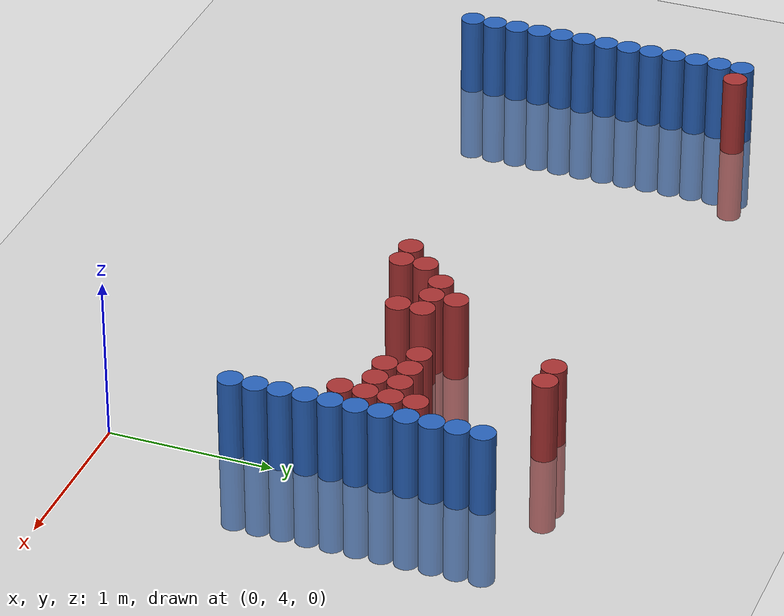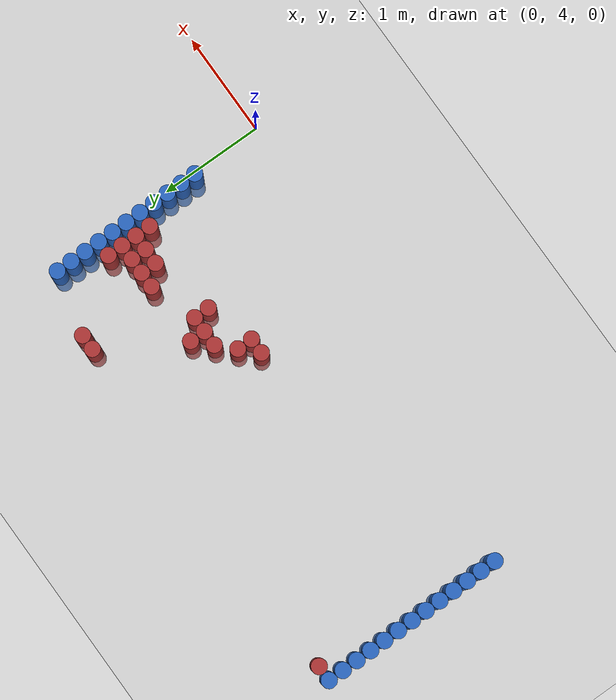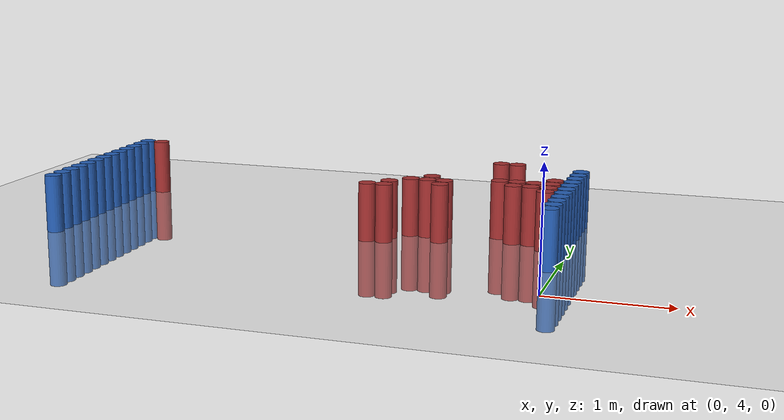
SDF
<sdf version="1.6">
 <world name="default">
  <model name="ground_plane">
   <static>1</static>
   <link name="link">
    <collision name="collision">
     <geometry><plane><normal>0 0 1</normal><size>100 100</size></plane></geometry>
     <surface><friction><ode><mu>100</mu><mu2>50</mu2></ode></friction></surface>
    </collision>
    <visual name="visual">
     <cast_shadows>0</cast_shadows>
     <geometry><plane><normal>0 0 1</normal><size>100 100</size></plane></geometry>
     <material>
      <script><uri>file://media/materials/scripts/gazebo.material</uri><name>Gazebo/Grey</name></script>
     </material>
    </visual>
   </link>
  </model>
  <model name="unit_cylinder_89">
   <static>1</static>
   <pose>-4.425000 4.575000 0.000000 0.000000 0.000000 0.000000</pose>
   <link name="link">
    <inertial>
     <mass>1</mass>
     <inertia><ixx>0.145833</ixx><ixy>0</ixy><ixz>0</ixz><iyy>0.145833</iyy><iyz>0</iyz><izz>0.125</izz></inertia>
    </inertial>
    <collision name="collision">
     <geometry><cylinder><radius>0.075000</radius><length>1</length></cylinder></geometry>
    </collision>
    <visual name="visual">
     <geometry><cylinder><radius>0.075000</radius><length>1</length></cylinder></geometry>
     <material>
      <ambient>0.152000 0.379000 0.720000 1</ambient>
      <diffuse>0.152000 0.379000 0.720000 1</diffuse>
     </material>
     <material>
      <script><name>Gazebo/Grey</name><uri>file://media/materials/scripts/gazebo.material</uri></script>
     </material>
    </visual>
   </link>
  </model>
  <model name="unit_cylinder_90">
   <static>1</static>
   <pose>-0.075000 4.725000 0.000000 0.000000 0.000000 0.000000</pose>
   <link name="link">
    <inertial>
     <mass>1</mass>
     <inertia><ixx>0.145833</ixx><ixy>0</ixy><ixz>0</ixz><iyy>0.145833</iyy><iyz>0</iyz><izz>0.125</izz></inertia>
    </inertial>
    <collision name="collision">
     <geometry><cylinder><radius>0.075000</radius><length>1</length></cylinder></geometry>
    </collision>
    <visual name="visual">
     <geometry><cylinder><radius>0.075000</radius><length>1</length></cylinder></geometry>
     <material>
      <ambient>0.152000 0.379000 0.720000 1</ambient>
      <diffuse>0.152000 0.379000 0.720000 1</diffuse>
     </material>
     <material>
      <script><name>Gazebo/Grey</name><uri>file://media/materials/scripts/gazebo.material</uri></script>
     </material>
    </visual>
   </link>
  </model>
  <model name="unit_cylinder_91">
   <static>1</static>
   <pose>-4.425000 4.725000 0.000000 0.000000 0.000000 0.000000</pose>
   <link name="link">
    <inertial>
     <mass>1</mass>
     <inertia><ixx>0.145833</ixx><ixy>0</ixy><ixz>0</ixz><iyy>0.145833</iyy><iyz>0</iyz><izz>0.125</izz></inertia>
    </inertial>
    <collision name="collision">
     <geometry><cylinder><radius>0.075000</radius><length>1</length></cylinder></geometry>
    </collision>
    <visual name="visual">
     <geometry><cylinder><radius>0.075000</radius><length>1</length></cylinder></geometry>
     <material>
      <ambient>0.152000 0.379000 0.720000 1</ambient>
      <diffuse>0.152000 0.379000 0.720000 1</diffuse>
     </material>
     <material>
      <script><name>Gazebo/Grey</name><uri>file://media/materials/scripts/gazebo.material</uri></script>
     </material>
    </visual>
   </link>
  </model>
  <model name="unit_cylinder_92">
   <static>1</static>
   <pose>-0.075000 4.875000 0.000000 0.000000 0.000000 0.000000</pose>
   <link name="link">
    <inertial>
     <mass>1</mass>
     <inertia><ixx>0.145833</ixx><ixy>0</ixy><ixz>0</ixz><iyy>0.145833</iyy><iyz>0</iyz><izz>0.125</izz></inertia>
    </inertial>
    <collision name="collision">
     <geometry><cylinder><radius>0.075000</radius><length>1</length></cylinder></geometry>
    </collision>
    <visual name="visual">
     <geometry><cylinder><radius>0.075000</radius><length>1</length></cylinder></geometry>
     <material>
      <ambient>0.152000 0.379000 0.720000 1</ambient>
      <diffuse>0.152000 0.379000 0.720000 1</diffuse>
     </material>
     <material>
      <script><name>Gazebo/Grey</name><uri>file://media/materials/scripts/gazebo.material</uri></script>
     </material>
    </visual>
   </link>
  </model>
  <model name="unit_cylinder_93">
   <static>1</static>
   <pose>-4.425000 4.875000 0.000000 0.000000 0.000000 0.000000</pose>
   <link name="link">
    <inertial>
     <mass>1</mass>
     <inertia><ixx>0.145833</ixx><ixy>0</ixy><ixz>0</ixz><iyy>0.145833</iyy><iyz>0</iyz><izz>0.125</izz></inertia>
    </inertial>
    <collision name="collision">
     <geometry><cylinder><radius>0.075000</radius><length>1</length></cylinder></geometry>
    </collision>
    <visual name="visual">
     <geometry><cylinder><radius>0.075000</radius><length>1</length></cylinder></geometry>
     <material>
      <ambient>0.152000 0.379000 0.720000 1</ambient>
      <diffuse>0.152000 0.379000 0.720000 1</diffuse>
     </material>
     <material>
      <script><name>Gazebo/Grey</name><uri>file://media/materials/scripts/gazebo.material</uri></script>
     </material>
    </visual>
   </link>
  </model>
  <model name="unit_cylinder_94">
   <static>1</static>
   <pose>-0.075000 5.025000 0.000000 0.000000 0.000000 0.000000</pose>
   <link name="link">
    <inertial>
     <mass>1</mass>
     <inertia><ixx>0.145833</ixx><ixy>0</ixy><ixz>0</ixz><iyy>0.145833</iyy><iyz>0</iyz><izz>0.125</izz></inertia>
    </inertial>
    <collision name="collision">
     <geometry><cylinder><radius>0.075000</radius><length>1</length></cylinder></geometry>
    </collision>
    <visual name="visual">
     <geometry><cylinder><radius>0.075000</radius><length>1</length></cylinder></geometry>
     <material>
      <ambient>0.152000 0.379000 0.720000 1</ambient>
      <diffuse>0.152000 0.379000 0.720000 1</diffuse>
     </material>
     <material>
      <script><name>Gazebo/Grey</name><uri>file://media/materials/scripts/gazebo.material</uri></script>
     </material>
    </visual>
   </link>
  </model>
  <model name="unit_cylinder_95">
   <static>1</static>
   <pose>-4.425000 5.025000 0.000000 0.000000 0.000000 0.000000</pose>
   <link name="link">
    <inertial>
     <mass>1</mass>
     <inertia><ixx>0.145833</ixx><ixy>0</ixy><ixz>0</ixz><iyy>0.145833</iyy><iyz>0</iyz><izz>0.125</izz></inertia>
    </inertial>
    <collision name="collision">
     <geometry><cylinder><radius>0.075000</radius><length>1</length></cylinder></geometry>
    </collision>
    <visual name="visual">
     <geometry><cylinder><radius>0.075000</radius><length>1</length></cylinder></geometry>
     <material>
      <ambient>0.152000 0.379000 0.720000 1</ambient>
      <diffuse>0.152000 0.379000 0.720000 1</diffuse>
     </material>
     <material>
      <script><name>Gazebo/Grey</name><uri>file://media/materials/scripts/gazebo.material</uri></script>
     </material>
    </visual>
   </link>
  </model>
  <model name="unit_cylinder_96">
   <static>1</static>
   <pose>-4.425000 5.175000 0.000000 0.000000 0.000000 0.000000</pose>
   <link name="link">
    <inertial>
     <mass>1</mass>
     <inertia><ixx>0.145833</ixx><ixy>0</ixy><ixz>0</ixz><iyy>0.145833</iyy><iyz>0</iyz><izz>0.125</izz></inertia>
    </inertial>
    <collision name="collision">
     <geometry><cylinder><radius>0.075000</radius><length>1</length></cylinder></geometry>
    </collision>
    <visual name="visual">
     <geometry><cylinder><radius>0.075000</radius><length>1</length></cylinder></geometry>
     <material>
      <ambient>0.152000 0.379000 0.720000 1</ambient>
      <diffuse>0.152000 0.379000 0.720000 1</diffuse>
     </material>
     <material>
      <script><name>Gazebo/Grey</name><uri>file://media/materials/scripts/gazebo.material</uri></script>
     </material>
    </visual>
   </link>
  </model>
  <model name="unit_cylinder_97">
   <static>1</static>
   <pose>-4.425000 5.325000 0.000000 0.000000 0.000000 0.000000</pose>
   <link name="link">
    <inertial>
     <mass>1</mass>
     <inertia><ixx>0.145833</ixx><ixy>0</ixy><ixz>0</ixz><iyy>0.145833</iyy><iyz>0</iyz><izz>0.125</izz></inertia>
    </inertial>
    <collision name="collision">
     <geometry><cylinder><radius>0.075000</radius><length>1</length></cylinder></geometry>
    </collision>
    <visual name="visual">
     <geometry><cylinder><radius>0.075000</radius><length>1</length></cylinder></geometry>
     <material>
      <ambient>0.152000 0.379000 0.720000 1</ambient>
      <diffuse>0.152000 0.379000 0.720000 1</diffuse>
     </material>
     <material>
      <script><name>Gazebo/Grey</name><uri>file://media/materials/scripts/gazebo.material</uri></script>
     </material>
    </visual>
   </link>
  </model>
  <model name="unit_cylinder_98">
   <static>1</static>
   <pose>-4.425000 5.475000 0.000000 0.000000 0.000000 0.000000</pose>
   <link name="link">
    <inertial>
     <mass>1</mass>
     <inertia><ixx>0.145833</ixx><ixy>0</ixy><ixz>0</ixz><iyy>0.145833</iyy><iyz>0</iyz><izz>0.125</izz></inertia>
    </inertial>
    <collision name="collision">
     <geometry><cylinder><radius>0.075000</radius><length>1</length></cylinder></geometry>
    </collision>
    <visual name="visual">
     <geometry><cylinder><radius>0.075000</radius><length>1</length></cylinder></geometry>
     <material>
      <ambient>0.152000 0.379000 0.720000 1</ambient>
      <diffuse>0.152000 0.379000 0.720000 1</diffuse>
     </material>
     <material>
      <script><name>Gazebo/Grey</name><uri>file://media/materials/scripts/gazebo.material</uri></script>
     </material>
    </visual>
   </link>
  </model>
  <model name="unit_cylinder_99">
   <static>1</static>
   <pose>-4.425000 5.625000 0.000000 0.000000 0.000000 0.000000</pose>
   <link name="link">
    <inertial>
     <mass>1</mass>
     <inertia><ixx>0.145833</ixx><ixy>0</ixy><ixz>0</ixz><iyy>0.145833</iyy><iyz>0</iyz><izz>0.125</izz></inertia>
    </inertial>
    <collision name="collision">
     <geometry><cylinder><radius>0.075000</radius><length>1</length></cylinder></geometry>
    </collision>
    <visual name="visual">
     <geometry><cylinder><radius>0.075000</radius><length>1</length></cylinder></geometry>
     <material>
      <ambient>0.152000 0.379000 0.720000 1</ambient>
      <diffuse>0.152000 0.379000 0.720000 1</diffuse>
     </material>
     <material>
      <script><name>Gazebo/Grey</name><uri>file://media/materials/scripts/gazebo.material</uri></script>
     </material>
    </visual>
   </link>
  </model>
  <model name="unit_cylinder_100">
   <static>1</static>
   <pose>-4.425000 5.775000 0.000000 0.000000 0.000000 0.000000</pose>
   <link name="link">
    <inertial>
     <mass>1</mass>
     <inertia><ixx>0.145833</ixx><ixy>0</ixy><ixz>0</ixz><iyy>0.145833</iyy><iyz>0</iyz><izz>0.125</izz></inertia>
    </inertial>
    <collision name="collision">
     <geometry><cylinder><radius>0.075000</radius><length>1</length></cylinder></geometry>
    </collision>
    <visual name="visual">
     <geometry><cylinder><radius>0.075000</radius><length>1</length></cylinder></geometry>
     <material>
      <ambient>0.152000 0.379000 0.720000 1</ambient>
      <diffuse>0.152000 0.379000 0.720000 1</diffuse>
     </material>
     <material>
      <script><name>Gazebo/Grey</name><uri>file://media/materials/scripts/gazebo.material</uri></script>
     </material>
    </visual>
   </link>
  </model>
  <model name="unit_cylinder_101">
   <static>1</static>
   <pose>-4.425000 5.925000 0.000000 0.000000 0.000000 0.000000</pose>
   <link name="link">
    <inertial>
     <mass>1</mass>
     <inertia><ixx>0.145833</ixx><ixy>0</ixy><ixz>0</ixz><iyy>0.145833</iyy><iyz>0</iyz><izz>0.125</izz></inertia>
    </inertial>
    <collision name="collision">
     <geometry><cylinder><radius>0.075000</radius><length>1</length></cylinder></geometry>
    </collision>
    <visual name="visual">
     <geometry><cylinder><radius>0.075000</radius><length>1</length></cylinder></geometry>
     <material>
      <ambient>0.152000 0.379000 0.720000 1</ambient>
      <diffuse>0.152000 0.379000 0.720000 1</diffuse>
     </material>
     <material>
      <script><name>Gazebo/Grey</name><uri>file://media/materials/scripts/gazebo.material</uri></script>
     </material>
    </visual>
   </link>
  </model>
  <model name="unit_cylinder_102">
   <static>1</static>
   <pose>-4.425000 6.075000 0.000000 0.000000 0.000000 0.000000</pose>
   <link name="link">
    <inertial>
     <mass>1</mass>
     <inertia><ixx>0.145833</ixx><ixy>0</ixy><ixz>0</ixz><iyy>0.145833</iyy><iyz>0</iyz><izz>0.125</izz></inertia>
    </inertial>
    <collision name="collision">
     <geometry><cylinder><radius>0.075000</radius><length>1</length></cylinder></geometry>
    </collision>
    <visual name="visual">
     <geometry><cylinder><radius>0.075000</radius><length>1</length></cylinder></geometry>
     <material>
      <ambient>0.152000 0.379000 0.720000 1</ambient>
      <diffuse>0.152000 0.379000 0.720000 1</diffuse>
     </material>
     <material>
      <script><name>Gazebo/Grey</name><uri>file://media/materials/scripts/gazebo.material</uri></script>
     </material>
    </visual>
   </link>
  </model>
  <model name="unit_cylinder_103">
   <static>1</static>
   <pose>-4.425000 6.225000 0.000000 0.000000 0.000000 0.000000</pose>
   <link name="link">
    <inertial>
     <mass>1</mass>
     <inertia><ixx>0.145833</ixx><ixy>0</ixy><ixz>0</ixz><iyy>0.145833</iyy><iyz>0</iyz><izz>0.125</izz></inertia>
    </inertial>
    <collision name="collision">
     <geometry><cylinder><radius>0.075000</radius><length>1</length></cylinder></geometry>
    </collision>
    <visual name="visual">
     <geometry><cylinder><radius>0.075000</radius><length>1</length></cylinder></geometry>
     <material>
      <ambient>0.152000 0.379000 0.720000 1</ambient>
      <diffuse>0.152000 0.379000 0.720000 1</diffuse>
     </material>
     <material>
      <script><name>Gazebo/Grey</name><uri>file://media/materials/scripts/gazebo.material</uri></script>
     </material>
    </visual>
   </link>
  </model>
  <model name="unit_cylinder_104">
   <static>1</static>
   <pose>-4.425000 6.375000 0.000000 0.000000 0.000000 0.000000</pose>
   <link name="link">
    <inertial>
     <mass>1</mass>
     <inertia><ixx>0.145833</ixx><ixy>0</ixy><ixz>0</ixz><iyy>0.145833</iyy><iyz>0</iyz><izz>0.125</izz></inertia>
    </inertial>
    <collision name="collision">
     <geometry><cylinder><radius>0.075000</radius><length>1</length></cylinder></geometry>
    </collision>
    <visual name="visual">
     <geometry><cylinder><radius>0.075000</radius><length>1</length></cylinder></geometry>
     <material>
      <ambient>0.152000 0.379000 0.720000 1</ambient>
      <diffuse>0.152000 0.379000 0.720000 1</diffuse>
     </material>
     <material>
      <script><name>Gazebo/Grey</name><uri>file://media/materials/scripts/gazebo.material</uri></script>
     </material>
    </visual>
   </link>
  </model>
  <model name="unit_cylinder_126">
   <static>1</static>
   <pose>-4.275000 6.375000 0.000000 0.000000 0.000000 0.000000</pose>
   <link name="link">
    <inertial>
     <mass>1</mass>
     <inertia><ixx>0.145833</ixx><ixy>0</ixy><ixz>0</ixz><iyy>0.145833</iyy><iyz>0</iyz><izz>0.125</izz></inertia>
    </inertial>
    <collision name="collision">
     <geometry><cylinder><radius>0.075000</radius><length>1</length></cylinder></geometry>
    </collision>
    <visual name="visual">
     <geometry><cylinder><radius>0.075000</radius><length>1</length></cylinder></geometry>
     <material>
      <ambient>0.648000 0.192000 0.192000 1</ambient>
      <diffuse>0.648000 0.192000 0.192000 1</diffuse>
     </material>
     <material>
      <script><name>Gazebo/Grey</name><uri>file://media/materials/scripts/gazebo.material</uri></script>
     </material>
    </visual>
   </link>
  </model>
  <model name="unit_cylinder_158">
   <static>1</static>
   <pose>-1.725000 5.175000 0.000000 0.000000 0.000000 0.000000</pose>
   <link name="link">
    <inertial>
     <mass>1</mass>
     <inertia><ixx>0.145833</ixx><ixy>0</ixy><ixz>0</ixz><iyy>0.145833</iyy><iyz>0</iyz><izz>0.125</izz></inertia>
    </inertial>
    <collision name="collision">
     <geometry><cylinder><radius>0.075000</radius><length>1</length></cylinder></geometry>
    </collision>
    <visual name="visual">
     <geometry><cylinder><radius>0.075000</radius><length>1</length></cylinder></geometry>
     <material>
      <ambient>0.648000 0.192000 0.192000 1</ambient>
      <diffuse>0.648000 0.192000 0.192000 1</diffuse>
     </material>
     <material>
      <script><name>Gazebo/Grey</name><uri>file://media/materials/scripts/gazebo.material</uri></script>
     </material>
    </visual>
   </link>
  </model>
  <model name="unit_cylinder_159">
   <static>1</static>
   <pose>-1.575000 5.175000 0.000000 0.000000 0.000000 0.000000</pose>
   <link name="link">
    <inertial>
     <mass>1</mass>
     <inertia><ixx>0.145833</ixx><ixy>0</ixy><ixz>0</ixz><iyy>0.145833</iyy><iyz>0</iyz><izz>0.125</izz></inertia>
    </inertial>
    <collision name="collision">
     <geometry><cylinder><radius>0.075000</radius><length>1</length></cylinder></geometry>
    </collision>
    <visual name="visual">
     <geometry><cylinder><radius>0.075000</radius><length>1</length></cylinder></geometry>
     <material>
      <ambient>0.648000 0.192000 0.192000 1</ambient>
      <diffuse>0.648000 0.192000 0.192000 1</diffuse>
     </material>
     <material>
      <script><name>Gazebo/Grey</name><uri>file://media/materials/scripts/gazebo.material</uri></script>
     </material>
    </visual>
   </link>
  </model>
  <model name="unit_cylinder_160">
   <static>1</static>
   <pose>-1.575000 5.325000 0.000000 0.000000 0.000000 0.000000</pose>
   <link name="link">
    <inertial>
     <mass>1</mass>
     <inertia><ixx>0.145833</ixx><ixy>0</ixy><ixz>0</ixz><iyy>0.145833</iyy><iyz>0</iyz><izz>0.125</izz></inertia>
    </inertial>
    <collision name="collision">
     <geometry><cylinder><radius>0.075000</radius><length>1</length></cylinder></geometry>
    </collision>
    <visual name="visual">
     <geometry><cylinder><radius>0.075000</radius><length>1</length></cylinder></geometry>
     <material>
      <ambient>0.648000 0.192000 0.192000 1</ambient>
      <diffuse>0.648000 0.192000 0.192000 1</diffuse>
     </material>
     <material>
      <script><name>Gazebo/Grey</name><uri>file://media/materials/scripts/gazebo.material</uri></script>
     </material>
    </visual>
   </link>
  </model>
  <model name="unit_cylinder_161">
   <static>1</static>
   <pose>-1.425000 5.475000 0.000000 0.000000 0.000000 0.000000</pose>
   <link name="link">
    <inertial>
     <mass>1</mass>
     <inertia><ixx>0.145833</ixx><ixy>0</ixy><ixz>0</ixz><iyy>0.145833</iyy><iyz>0</iyz><izz>0.125</izz></inertia>
    </inertial>
    <collision name="collision">
     <geometry><cylinder><radius>0.075000</radius><length>1</length></cylinder></geometry>
    </collision>
    <visual name="visual">
     <geometry><cylinder><radius>0.075000</radius><length>1</length></cylinder></geometry>
     <material>
      <ambient>0.648000 0.192000 0.192000 1</ambient>
      <diffuse>0.648000 0.192000 0.192000 1</diffuse>
     </material>
     <material>
      <script><name>Gazebo/Grey</name><uri>file://media/materials/scripts/gazebo.material</uri></script>
     </material>
    </visual>
   </link>
  </model>
  <model name="unit_cylinder_162">
   <static>1</static>
   <pose>-1.275000 5.475000 0.000000 0.000000 0.000000 0.000000</pose>
   <link name="link">
    <inertial>
     <mass>1</mass>
     <inertia><ixx>0.145833</ixx><ixy>0</ixy><ixz>0</ixz><iyy>0.145833</iyy><iyz>0</iyz><izz>0.125</izz></inertia>
    </inertial>
    <collision name="collision">
     <geometry><cylinder><radius>0.075000</radius><length>1</length></cylinder></geometry>
    </collision>
    <visual name="visual">
     <geometry><cylinder><radius>0.075000</radius><length>1</length></cylinder></geometry>
     <material>
      <ambient>0.648000 0.192000 0.192000 1</ambient>
      <diffuse>0.648000 0.192000 0.192000 1</diffuse>
     </material>
     <material>
      <script><name>Gazebo/Grey</name><uri>file://media/materials/scripts/gazebo.material</uri></script>
     </material>
    </visual>
   </link>
  </model>
  <model name="unit_cylinder_163">
   <static>1</static>
   <pose>-1.275000 5.625000 0.000000 0.000000 0.000000 0.000000</pose>
   <link name="link">
    <inertial>
     <mass>1</mass>
     <inertia><ixx>0.145833</ixx><ixy>0</ixy><ixz>0</ixz><iyy>0.145833</iyy><iyz>0</iyz><izz>0.125</izz></inertia>
    </inertial>
    <collision name="collision">
     <geometry><cylinder><radius>0.075000</radius><length>1</length></cylinder></geometry>
    </collision>
    <visual name="visual">
     <geometry><cylinder><radius>0.075000</radius><length>1</length></cylinder></geometry>
     <material>
      <ambient>0.648000 0.192000 0.192000 1</ambient>
      <diffuse>0.648000 0.192000 0.192000 1</diffuse>
     </material>
     <material>
      <script><name>Gazebo/Grey</name><uri>file://media/materials/scripts/gazebo.material</uri></script>
     </material>
    </visual>
   </link>
  </model>
  <model name="unit_cylinder_164">
   <static>1</static>
   <pose>-1.125000 5.325000 0.000000 0.000000 0.000000 0.000000</pose>
   <link name="link">
    <inertial>
     <mass>1</mass>
     <inertia><ixx>0.145833</ixx><ixy>0</ixy><ixz>0</ixz><iyy>0.145833</iyy><iyz>0</iyz><izz>0.125</izz></inertia>
    </inertial>
    <collision name="collision">
     <geometry><cylinder><radius>0.075000</radius><length>1</length></cylinder></geometry>
    </collision>
    <visual name="visual">
     <geometry><cylinder><radius>0.075000</radius><length>1</length></cylinder></geometry>
     <material>
      <ambient>0.648000 0.192000 0.192000 1</ambient>
      <diffuse>0.648000 0.192000 0.192000 1</diffuse>
     </material>
     <material>
      <script><name>Gazebo/Grey</name><uri>file://media/materials/scripts/gazebo.material</uri></script>
     </material>
    </visual>
   </link>
  </model>
  <model name="unit_cylinder_165">
   <static>1</static>
   <pose>-1.125000 5.475000 0.000000 0.000000 0.000000 0.000000</pose>
   <link name="link">
    <inertial>
     <mass>1</mass>
     <inertia><ixx>0.145833</ixx><ixy>0</ixy><ixz>0</ixz><iyy>0.145833</iyy><iyz>0</iyz><izz>0.125</izz></inertia>
    </inertial>
    <collision name="collision">
     <geometry><cylinder><radius>0.075000</radius><length>1</length></cylinder></geometry>
    </collision>
    <visual name="visual">
     <geometry><cylinder><radius>0.075000</radius><length>1</length></cylinder></geometry>
     <material>
      <ambient>0.648000 0.192000 0.192000 1</ambient>
      <diffuse>0.648000 0.192000 0.192000 1</diffuse>
     </material>
     <material>
      <script><name>Gazebo/Grey</name><uri>file://media/materials/scripts/gazebo.material</uri></script>
     </material>
    </visual>
   </link>
  </model>
  <model name="unit_cylinder_166">
   <static>1</static>
   <pose>-0.825000 6.375000 0.000000 0.000000 0.000000 0.000000</pose>
   <link name="link">
    <inertial>
     <mass>1</mass>
     <inertia><ixx>0.145833</ixx><ixy>0</ixy><ixz>0</ixz><iyy>0.145833</iyy><iyz>0</iyz><izz>0.125</izz></inertia>
    </inertial>
    <collision name="collision">
     <geometry><cylinder><radius>0.075000</radius><length>1</length></cylinder></geometry>
    </collision>
    <visual name="visual">
     <geometry><cylinder><radius>0.075000</radius><length>1</length></cylinder></geometry>
     <material>
      <ambient>0.648000 0.192000 0.192000 1</ambient>
      <diffuse>0.648000 0.192000 0.192000 1</diffuse>
     </material>
     <material>
      <script><name>Gazebo/Grey</name><uri>file://media/materials/scripts/gazebo.material</uri></script>
     </material>
    </visual>
   </link>
  </model>
  <model name="unit_cylinder_168">
   <static>1</static>
   <pose>-0.675000 5.625000 0.000000 0.000000 0.000000 0.000000</pose>
   <link name="link">
    <inertial>
     <mass>1</mass>
     <inertia><ixx>0.145833</ixx><ixy>0</ixy><ixz>0</ixz><iyy>0.145833</iyy><iyz>0</iyz><izz>0.125</izz></inertia>
    </inertial>
    <collision name="collision">
     <geometry><cylinder><radius>0.075000</radius><length>1</length></cylinder></geometry>
    </collision>
    <visual name="visual">
     <geometry><cylinder><radius>0.075000</radius><length>1</length></cylinder></geometry>
     <material>
      <ambient>0.648000 0.192000 0.192000 1</ambient>
      <diffuse>0.648000 0.192000 0.192000 1</diffuse>
     </material>
     <material>
      <script><name>Gazebo/Grey</name><uri>file://media/materials/scripts/gazebo.material</uri></script>
     </material>
    </visual>
   </link>
  </model>
  <model name="unit_cylinder_169">
   <static>1</static>
   <pose>-0.675000 6.375000 0.000000 0.000000 0.000000 0.000000</pose>
   <link name="link">
    <inertial>
     <mass>1</mass>
     <inertia><ixx>0.145833</ixx><ixy>0</ixy><ixz>0</ixz><iyy>0.145833</iyy><iyz>0</iyz><izz>0.125</izz></inertia>
    </inertial>
    <collision name="collision">
     <geometry><cylinder><radius>0.075000</radius><length>1</length></cylinder></geometry>
    </collision>
    <visual name="visual">
     <geometry><cylinder><radius>0.075000</radius><length>1</length></cylinder></geometry>
     <material>
      <ambient>0.648000 0.192000 0.192000 1</ambient>
      <diffuse>0.648000 0.192000 0.192000 1</diffuse>
     </material>
     <material>
      <script><name>Gazebo/Grey</name><uri>file://media/materials/scripts/gazebo.material</uri></script>
     </material>
    </visual>
   </link>
  </model>
  <model name="unit_cylinder_172">
   <static>1</static>
   <pose>-0.525000 5.475000 0.000000 0.000000 0.000000 0.000000</pose>
   <link name="link">
    <inertial>
     <mass>1</mass>
     <inertia><ixx>0.145833</ixx><ixy>0</ixy><ixz>0</ixz><iyy>0.145833</iyy><iyz>0</iyz><izz>0.125</izz></inertia>
    </inertial>
    <collision name="collision">
     <geometry><cylinder><radius>0.075000</radius><length>1</length></cylinder></geometry>
    </collision>
    <visual name="visual">
     <geometry><cylinder><radius>0.075000</radius><length>1</length></cylinder></geometry>
     <material>
      <ambient>0.648000 0.192000 0.192000 1</ambient>
      <diffuse>0.648000 0.192000 0.192000 1</diffuse>
     </material>
     <material>
      <script><name>Gazebo/Grey</name><uri>file://media/materials/scripts/gazebo.material</uri></script>
     </material>
    </visual>
   </link>
  </model>
  <model name="unit_cylinder_173">
   <static>1</static>
   <pose>-0.525000 5.625000 0.000000 0.000000 0.000000 0.000000</pose>
   <link name="link">
    <inertial>
     <mass>1</mass>
     <inertia><ixx>0.145833</ixx><ixy>0</ixy><ixz>0</ixz><iyy>0.145833</iyy><iyz>0</iyz><izz>0.125</izz></inertia>
    </inertial>
    <collision name="collision">
     <geometry><cylinder><radius>0.075000</radius><length>1</length></cylinder></geometry>
    </collision>
    <visual name="visual">
     <geometry><cylinder><radius>0.075000</radius><length>1</length></cylinder></geometry>
     <material>
      <ambient>0.648000 0.192000 0.192000 1</ambient>
      <diffuse>0.648000 0.192000 0.192000 1</diffuse>
     </material>
     <material>
      <script><name>Gazebo/Grey</name><uri>file://media/materials/scripts/gazebo.material</uri></script>
     </material>
    </visual>
   </link>
  </model>
  <model name="unit_cylinder_178">
   <static>1</static>
   <pose>-0.375000 5.475000 0.000000 0.000000 0.000000 0.000000</pose>
   <link name="link">
    <inertial>
     <mass>1</mass>
     <inertia><ixx>0.145833</ixx><ixy>0</ixy><ixz>0</ixz><iyy>0.145833</iyy><iyz>0</iyz><izz>0.125</izz></inertia>
    </inertial>
    <collision name="collision">
     <geometry><cylinder><radius>0.075000</radius><length>1</length></cylinder></geometry>
    </collision>
    <visual name="visual">
     <geometry><cylinder><radius>0.075000</radius><length>1</length></cylinder></geometry>
     <material>
      <ambient>0.648000 0.192000 0.192000 1</ambient>
      <diffuse>0.648000 0.192000 0.192000 1</diffuse>
     </material>
     <material>
      <script><name>Gazebo/Grey</name><uri>file://media/materials/scripts/gazebo.material</uri></script>
     </material>
    </visual>
   </link>
  </model>
  <model name="unit_cylinder_179">
   <static>1</static>
   <pose>-0.375000 5.625000 0.000000 0.000000 0.000000 0.000000</pose>
   <link name="link">
    <inertial>
     <mass>1</mass>
     <inertia><ixx>0.145833</ixx><ixy>0</ixy><ixz>0</ixz><iyy>0.145833</iyy><iyz>0</iyz><izz>0.125</izz></inertia>
    </inertial>
    <collision name="collision">
     <geometry><cylinder><radius>0.075000</radius><length>1</length></cylinder></geometry>
    </collision>
    <visual name="visual">
     <geometry><cylinder><radius>0.075000</radius><length>1</length></cylinder></geometry>
     <material>
      <ambient>0.648000 0.192000 0.192000 1</ambient>
      <diffuse>0.648000 0.192000 0.192000 1</diffuse>
     </material>
     <material>
      <script><name>Gazebo/Grey</name><uri>file://media/materials/scripts/gazebo.material</uri></script>
     </material>
    </visual>
   </link>
  </model>
  <model name="unit_cylinder_183">
   <static>1</static>
   <pose>-0.225000 5.325000 0.000000 0.000000 0.000000 0.000000</pose>
   <link name="link">
    <inertial>
     <mass>1</mass>
     <inertia><ixx>0.145833</ixx><ixy>0</ixy><ixz>0</ixz><iyy>0.145833</iyy><iyz>0</iyz><izz>0.125</izz></inertia>
    </inertial>
    <collision name="collision">
     <geometry><cylinder><radius>0.075000</radius><length>1</length></cylinder></geometry>
    </collision>
    <visual name="visual">
     <geometry><cylinder><radius>0.075000</radius><length>1</length></cylinder></geometry>
     <material>
      <ambient>0.648000 0.192000 0.192000 1</ambient>
      <diffuse>0.648000 0.192000 0.192000 1</diffuse>
     </material>
     <material>
      <script><name>Gazebo/Grey</name><uri>file://media/materials/scripts/gazebo.material</uri></script>
     </material>
    </visual>
   </link>
  </model>
  <model name="unit_cylinder_184">
   <static>1</static>
   <pose>-0.225000 5.475000 0.000000 0.000000 0.000000 0.000000</pose>
   <link name="link">
    <inertial>
     <mass>1</mass>
     <inertia><ixx>0.145833</ixx><ixy>0</ixy><ixz>0</ixz><iyy>0.145833</iyy><iyz>0</iyz><izz>0.125</izz></inertia>
    </inertial>
    <collision name="collision">
     <geometry><cylinder><radius>0.075000</radius><length>1</length></cylinder></geometry>
    </collision>
    <visual name="visual">
     <geometry><cylinder><radius>0.075000</radius><length>1</length></cylinder></geometry>
     <material>
      <ambient>0.648000 0.192000 0.192000 1</ambient>
      <diffuse>0.648000 0.192000 0.192000 1</diffuse>
     </material>
     <material>
      <script><name>Gazebo/Grey</name><uri>file://media/materials/scripts/gazebo.material</uri></script>
     </material>
    </visual>
   </link>
  </model>
  <model name="unit_cylinder_185">
   <static>1</static>
   <pose>-0.225000 5.625000 0.000000 0.000000 0.000000 0.000000</pose>
   <link name="link">
    <inertial>
     <mass>1</mass>
     <inertia><ixx>0.145833</ixx><ixy>0</ixy><ixz>0</ixz><iyy>0.145833</iyy><iyz>0</iyz><izz>0.125</izz></inertia>
    </inertial>
    <collision name="collision">
     <geometry><cylinder><radius>0.075000</radius><length>1</length></cylinder></geometry>
    </collision>
    <visual name="visual">
     <geometry><cylinder><radius>0.075000</radius><length>1</length></cylinder></geometry>
     <material>
      <ambient>0.648000 0.192000 0.192000 1</ambient>
      <diffuse>0.648000 0.192000 0.192000 1</diffuse>
     </material>
     <material>
      <script><name>Gazebo/Grey</name><uri>file://media/materials/scripts/gazebo.material</uri></script>
     </material>
    </visual>
   </link>
  </model>
  <model name="unit_cylinder_186">
   <static>1</static>
   <pose>-0.225000 5.775000 0.000000 0.000000 0.000000 0.000000</pose>
   <link name="link">
    <inertial>
     <mass>1</mass>
     <inertia><ixx>0.145833</ixx><ixy>0</ixy><ixz>0</ixz><iyy>0.145833</iyy><iyz>0</iyz><izz>0.125</izz></inertia>
    </inertial>
    <collision name="collision">
     <geometry><cylinder><radius>0.075000</radius><length>1</length></cylinder></geometry>
    </collision>
    <visual name="visual">
     <geometry><cylinder><radius>0.075000</radius><length>1</length></cylinder></geometry>
     <material>
      <ambient>0.648000 0.192000 0.192000 1</ambient>
      <diffuse>0.648000 0.192000 0.192000 1</diffuse>
     </material>
     <material>
      <script><name>Gazebo/Grey</name><uri>file://media/materials/scripts/gazebo.material</uri></script>
     </material>
    </visual>
   </link>
  </model>
  <model name="unit_cylinder_192">
   <static>1</static>
   <pose>-0.075000 5.175000 0.000000 0.000000 0.000000 0.000000</pose>
   <link name="link">
    <inertial>
     <mass>1</mass>
     <inertia><ixx>0.145833</ixx><ixy>0</ixy><ixz>0</ixz><iyy>0.145833</iyy><iyz>0</iyz><izz>0.125</izz></inertia>
    </inertial>
    <collision name="collision">
     <geometry><cylinder><radius>0.075000</radius><length>1</length></cylinder></geometry>
    </collision>
    <visual name="visual">
     <geometry><cylinder><radius>0.075000</radius><length>1</length></cylinder></geometry>
     <material>
      <ambient>0.152000 0.379000 0.720000 1</ambient>
      <diffuse>0.152000 0.379000 0.720000 1</diffuse>
     </material>
     <material>
      <script><name>Gazebo/Grey</name><uri>file://media/materials/scripts/gazebo.material</uri></script>
     </material>
    </visual>
   </link>
  </model>
  <model name="unit_cylinder_193">
   <static>1</static>
   <pose>-0.075000 5.325000 0.000000 0.000000 0.000000 0.000000</pose>
   <link name="link">
    <inertial>
     <mass>1</mass>
     <inertia><ixx>0.145833</ixx><ixy>0</ixy><ixz>0</ixz><iyy>0.145833</iyy><iyz>0</iyz><izz>0.125</izz></inertia>
    </inertial>
    <collision name="collision">
     <geometry><cylinder><radius>0.075000</radius><length>1</length></cylinder></geometry>
    </collision>
    <visual name="visual">
     <geometry><cylinder><radius>0.075000</radius><length>1</length></cylinder></geometry>
     <material>
      <ambient>0.152000 0.379000 0.720000 1</ambient>
      <diffuse>0.152000 0.379000 0.720000 1</diffuse>
     </material>
     <material>
      <script><name>Gazebo/Grey</name><uri>file://media/materials/scripts/gazebo.material</uri></script>
     </material>
    </visual>
   </link>
  </model>
  <model name="unit_cylinder_194">
   <static>1</static>
   <pose>-0.075000 5.475000 0.000000 0.000000 0.000000 0.000000</pose>
   <link name="link">
    <inertial>
     <mass>1</mass>
     <inertia><ixx>0.145833</ixx><ixy>0</ixy><ixz>0</ixz><iyy>0.145833</iyy><iyz>0</iyz><izz>0.125</izz></inertia>
    </inertial>
    <collision name="collision">
     <geometry><cylinder><radius>0.075000</radius><length>1</length></cylinder></geometry>
    </collision>
    <visual name="visual">
     <geometry><cylinder><radius>0.075000</radius><length>1</length></cylinder></geometry>
     <material>
      <ambient>0.152000 0.379000 0.720000 1</ambient>
      <diffuse>0.152000 0.379000 0.720000 1</diffuse>
     </material>
     <material>
      <script><name>Gazebo/Grey</name><uri>file://media/materials/scripts/gazebo.material</uri></script>
     </material>
    </visual>
   </link>
  </model>
  <model name="unit_cylinder_195">
   <static>1</static>
   <pose>-0.075000 5.625000 0.000000 0.000000 0.000000 0.000000</pose>
   <link name="link">
    <inertial>
     <mass>1</mass>
     <inertia><ixx>0.145833</ixx><ixy>0</ixy><ixz>0</ixz><iyy>0.145833</iyy><iyz>0</iyz><izz>0.125</izz></inertia>
    </inertial>
    <collision name="collision">
     <geometry><cylinder><radius>0.075000</radius><length>1</length></cylinder></geometry>
    </collision>
    <visual name="visual">
     <geometry><cylinder><radius>0.075000</radius><length>1</length></cylinder></geometry>
     <material>
      <ambient>0.152000 0.379000 0.720000 1</ambient>
      <diffuse>0.152000 0.379000 0.720000 1</diffuse>
     </material>
     <material>
      <script><name>Gazebo/Grey</name><uri>file://media/materials/scripts/gazebo.material</uri></script>
     </material>
    </visual>
   </link>
  </model>
  <model name="unit_cylinder_196">
   <static>1</static>
   <pose>-0.075000 5.775000 0.000000 0.000000 0.000000 0.000000</pose>
   <link name="link">
    <inertial>
     <mass>1</mass>
     <inertia><ixx>0.145833</ixx><ixy>0</ixy><ixz>0</ixz><iyy>0.145833</iyy><iyz>0</iyz><izz>0.125</izz></inertia>
    </inertial>
    <collision name="collision">
     <geometry><cylinder><radius>0.075000</radius><length>1</length></cylinder></geometry>
    </collision>
    <visual name="visual">
     <geometry><cylinder><radius>0.075000</radius><length>1</length></cylinder></geometry>
     <material>
      <ambient>0.152000 0.379000 0.720000 1</ambient>
      <diffuse>0.152000 0.379000 0.720000 1</diffuse>
     </material>
     <material>
      <script><name>Gazebo/Grey</name><uri>file://media/materials/scripts/gazebo.material</uri></script>
     </material>
    </visual>
   </link>
  </model>
  <model name="unit_cylinder_197">
   <static>1</static>
   <pose>-0.075000 5.925000 0.000000 0.000000 0.000000 0.000000</pose>
   <link name="link">
    <inertial>
     <mass>1</mass>
     <inertia><ixx>0.145833</ixx><ixy>0</ixy><ixz>0</ixz><iyy>0.145833</iyy><iyz>0</iyz><izz>0.125</izz></inertia>
    </inertial>
    <collision name="collision">
     <geometry><cylinder><radius>0.075000</radius><length>1</length></cylinder></geometry>
    </collision>
    <visual name="visual">
     <geometry><cylinder><radius>0.075000</radius><length>1</length></cylinder></geometry>
     <material>
      <ambient>0.152000 0.379000 0.720000 1</ambient>
      <diffuse>0.152000 0.379000 0.720000 1</diffuse>
     </material>
     <material>
      <script><name>Gazebo/Grey</name><uri>file://media/materials/scripts/gazebo.material</uri></script>
     </material>
    </visual>
   </link>
  </model>
  <model name="unit_cylinder_198">
   <static>1</static>
   <pose>-0.075000 6.075000 0.000000 0.000000 0.000000 0.000000</pose>
   <link name="link">
    <inertial>
     <mass>1</mass>
     <inertia><ixx>0.145833</ixx><ixy>0</ixy><ixz>0</ixz><iyy>0.145833</iyy><iyz>0</iyz><izz>0.125</izz></inertia>
    </inertial>
    <collision name="collision">
     <geometry><cylinder><radius>0.075000</radius><length>1</length></cylinder></geometry>
    </collision>
    <visual name="visual">
     <geometry><cylinder><radius>0.075000</radius><length>1</length></cylinder></geometry>
     <material>
      <ambient>0.152000 0.379000 0.720000 1</ambient>
      <diffuse>0.152000 0.379000 0.720000 1</diffuse>
     </material>
     <material>
      <script><name>Gazebo/Grey</name><uri>file://media/materials/scripts/gazebo.material</uri></script>
     </material>
    </visual>
   </link>
  </model>
  <model name="unit_cylinder_199">
   <static>1</static>
   <pose>-0.075000 6.225000 0.000000 0.000000 0.000000 0.000000</pose>
   <link name="link">
    <inertial>
     <mass>1</mass>
     <inertia><ixx>0.145833</ixx><ixy>0</ixy><ixz>0</ixz><iyy>0.145833</iyy><iyz>0</iyz><izz>0.125</izz></inertia>
    </inertial>
    <collision name="collision">
     <geometry><cylinder><radius>0.075000</radius><length>1</length></cylinder></geometry>
    </collision>
    <visual name="visual">
     <geometry><cylinder><radius>0.075000</radius><length>1</length></cylinder></geometry>
     <material>
      <ambient>0.152000 0.379000 0.720000 1</ambient>
      <diffuse>0.152000 0.379000 0.720000 1</diffuse>
     </material>
     <material>
      <script><name>Gazebo/Grey</name><uri>file://media/materials/scripts/gazebo.material</uri></script>
     </material>
    </visual>
   </link>
  </model>
 </world>
</sdf>
